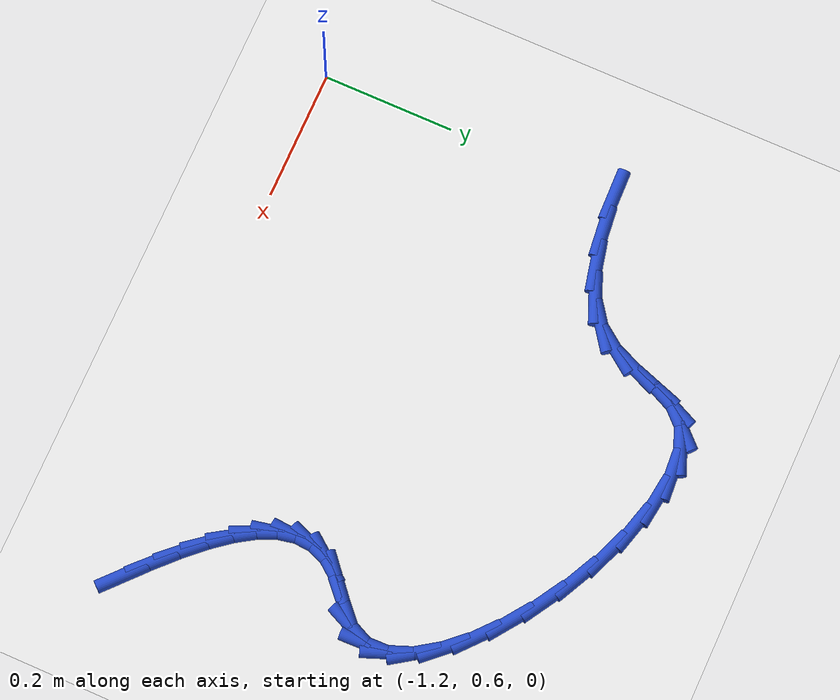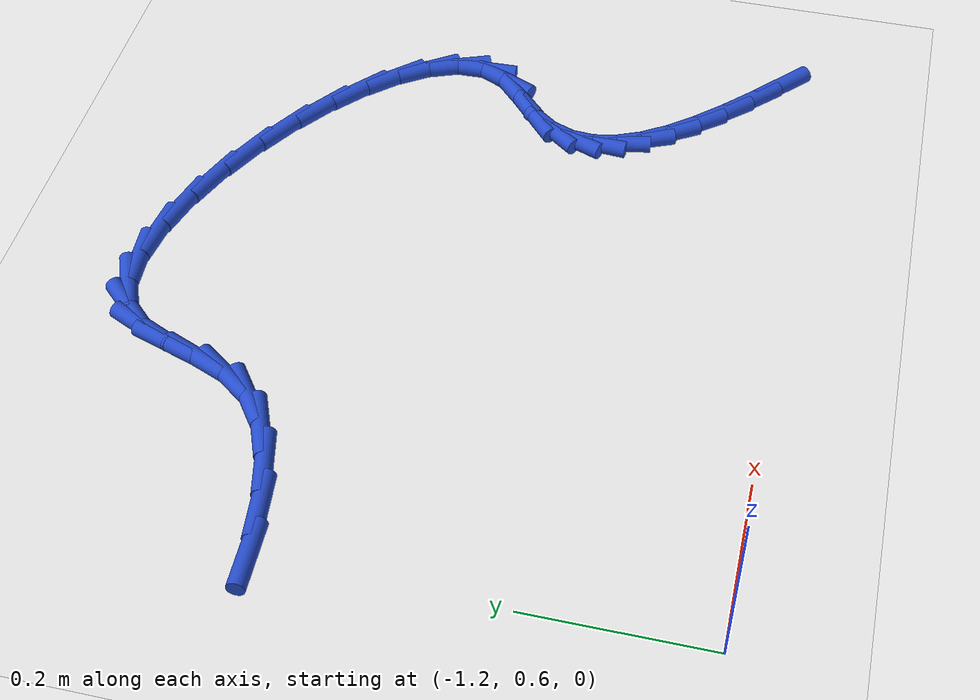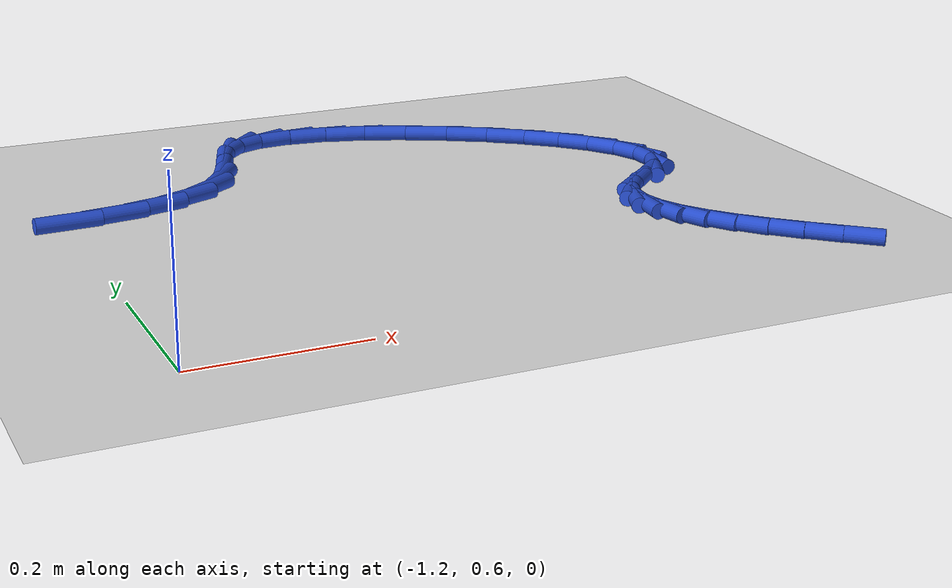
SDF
<sdf version="1.6">
 <world name="default">
  <model name="ground_plane">
   <static>1</static>
   <link name="link">
    <collision name="collision">
     <geometry><plane><normal>0 0 1</normal><size>100 100</size></plane></geometry>
     <surface><friction><ode><mu>100</mu><mu2>50</mu2></ode></friction></surface>
    </collision>
    <visual name="visual">
     <cast_shadows>0</cast_shadows>
     <geometry><plane><normal>0 0 1</normal><size>100 100</size></plane></geometry>
     <material>
      <script><uri>file://media/materials/scripts/gazebo.material</uri><name>Gazebo/WhiteGlow</name></script>
     </material>
    </visual>
   </link>
  </model>
  <model name="line">
   <link name="link_18">
    <pose>-0.3944733645295602 0.643469968081901 0.01 0 1.57 -0.7333899221836887</pose>
    <collision name="collision">
     <geometry><cylinder><radius>0.01</radius><length>0.08</length></cylinder></geometry>
    </collision>
    <visual name="visual">
     <material>
      <script><name>Gazebo/Blue</name><uri>file://media/materials/scripts/gazebo.material</uri></script>
     </material>
     <geometry><cylinder><radius>0.01</radius><length>0.08</length></cylinder></geometry>
    </visual>
   </link>
   <link name="link_19">
    <pose>-0.42904845508757306 0.6746235409936031 0.01 0 1.57 -0.7681784095103517</pose>
    <collision name="collision">
     <geometry><cylinder><radius>0.01</radius><length>0.08</length></cylinder></geometry>
    </collision>
    <visual name="visual">
     <material>
      <script><name>Gazebo/Blue</name><uri>file://media/materials/scripts/gazebo.material</uri></script>
     </material>
     <geometry><cylinder><radius>0.01</radius><length>0.08</length></cylinder></geometry>
    </visual>
   </link>
   <link name="link_20">
    <pose>-0.46063235762906846 0.7051380190012713 0.01 0 1.57 -0.8201573629295184</pose>
    <collision name="collision">
     <geometry><cylinder><radius>0.01</radius><length>0.08</length></cylinder></geometry>
    </collision>
    <visual name="visual">
     <material>
      <script><name>Gazebo/Blue</name><uri>file://media/materials/scripts/gazebo.material</uri></script>
     </material>
     <geometry><cylinder><radius>0.01</radius><length>0.08</length></cylinder></geometry>
    </visual>
   </link>
   <link name="link_21">
    <pose>-0.4884792883546626 0.7349913735768715 0.01 0 1.57 -0.8954700918053922</pose>
    <collision name="collision">
     <geometry><cylinder><radius>0.01</radius><length>0.08</length></cylinder></geometry>
    </collision>
    <visual name="visual">
     <material>
      <script><name>Gazebo/Blue</name><uri>file://media/materials/scripts/gazebo.material</uri></script>
     </material>
     <geometry><cylinder><radius>0.01</radius><length>0.08</length></cylinder></geometry>
    </visual>
   </link>
   <link name="link_22">
    <pose>-0.5118434634649714 0.7641615761923694 0.01 0 1.57 -1.0035289208157723</pose>
    <collision name="collision">
     <geometry><cylinder><radius>0.01</radius><length>0.08</length></cylinder></geometry>
    </collision>
    <visual name="visual">
     <material>
      <script><name>Gazebo/Blue</name><uri>file://media/materials/scripts/gazebo.material</uri></script>
     </material>
     <geometry><cylinder><radius>0.01</radius><length>0.08</length></cylinder></geometry>
    </visual>
   </link>
   <link name="link_23">
    <pose>-0.5299790991606106 0.7926265983197295 0.01 0 1.57 -1.1575988159489503</pose>
    <collision name="collision">
     <geometry><cylinder><radius>0.01</radius><length>0.08</length></cylinder></geometry>
    </collision>
    <visual name="visual">
     <material>
      <script><name>Gazebo/Blue</name><uri>file://media/materials/scripts/gazebo.material</uri></script>
     </material>
     <geometry><cylinder><radius>0.01</radius><length>0.08</length></cylinder></geometry>
    </visual>
   </link>
   <link name="link_24">
    <pose>-0.5421404116421964 0.8203644114309181 0.01 0 1.57 -1.371851790773864</pose>
    <collision name="collision">
     <geometry><cylinder><radius>0.01</radius><length>0.08</length></cylinder></geometry>
    </collision>
    <visual name="visual">
     <material>
      <script><name>Gazebo/Blue</name><uri>file://media/materials/scripts/gazebo.material</uri></script>
     </material>
     <geometry><cylinder><radius>0.01</radius><length>0.08</length></cylinder></geometry>
    </visual>
   </link>
   <link name="link_25">
    <pose>-0.5475816171103445 0.8473529869979004 0.01 0 1.57 1.4937222623565098</pose>
    <collision name="collision">
     <geometry><cylinder><radius>0.01</radius><length>0.08</length></cylinder></geometry>
    </collision>
    <visual name="visual">
     <material>
      <script><name>Gazebo/Blue</name><uri>file://media/materials/scripts/gazebo.material</uri></script>
     </material>
     <geometry><cylinder><radius>0.01</radius><length>0.08</length></cylinder></geometry>
    </visual>
   </link>
   <link name="link_26">
    <pose>-0.5455569317656712 0.8735702964926421 0.01 0 1.57 1.188028528805704</pose>
    <collision name="collision">
     <geometry><cylinder><radius>0.01</radius><length>0.08</length></cylinder></geometry>
    </collision>
    <visual name="visual">
     <material>
      <script><name>Gazebo/Blue</name><uri>file://media/materials/scripts/gazebo.material</uri></script>
     </material>
     <geometry><cylinder><radius>0.01</radius><length>0.08</length></cylinder></geometry>
    </visual>
   </link>
   <link name="link_27">
    <pose>-0.5353205718087921 0.8989943113871081 0.01 0 1.57 0.9083943182646078</pose>
    <collision name="collision">
     <geometry><cylinder><radius>0.01</radius><length>0.08</length></cylinder></geometry>
    </collision>
    <visual name="visual">
     <material>
      <script><name>Gazebo/Blue</name><uri>file://media/materials/scripts/gazebo.material</uri></script>
     </material>
     <geometry><cylinder><radius>0.01</radius><length>0.08</length></cylinder></geometry>
    </visual>
   </link>
   <link name="link_28">
    <pose>-0.5161267534403231 0.923603003153264 0.01 0 1.57 0.6995589979222087</pose>
    <collision name="collision">
     <geometry><cylinder><radius>0.01</radius><length>0.08</length></cylinder></geometry>
    </collision>
    <visual name="visual">
     <material>
      <script><name>Gazebo/Blue</name><uri>file://media/materials/scripts/gazebo.material</uri></script>
     </material>
     <geometry><cylinder><radius>0.01</radius><length>0.08</length></cylinder></geometry>
    </visual>
   </link>
   <link name="link_29">
    <pose>-0.4877557013883198 0.9474782304685976 0.01 0 1.57 0.7387398171998228</pose>
    <collision name="collision">
     <geometry><cylinder><radius>0.01</radius><length>0.08</length></cylinder></geometry>
    </collision>
    <visual name="visual">
     <material>
      <script><name>Gazebo/Blue</name><uri>file://media/materials/scripts/gazebo.material</uri></script>
     </material>
     <geometry><cylinder><radius>0.01</radius><length>0.08</length></cylinder></geometry>
    </visual>
   </link>
   <link name="link_30">
    <pose>-0.46007120582056277 0.972692752711297 0.01 0 1.57 1.136447964704241</pose>
    <collision name="collision">
     <geometry><cylinder><radius>0.01</radius><length>0.08</length></cylinder></geometry>
    </collision>
    <visual name="visual">
     <material>
      <script><name>Gazebo/Blue</name><uri>file://media/materials/scripts/gazebo.material</uri></script>
     </material>
     <geometry><cylinder><radius>0.01</radius><length>0.08</length></cylinder></geometry>
    </visual>
   </link>
   <link name="link_31">
    <pose>-0.4465619616064606 1.00181412196866 0.01 0 1.57 -1.542672664037682</pose>
    <collision name="collision">
     <geometry><cylinder><radius>0.01</radius><length>0.08</length></cylinder></geometry>
    </collision>
    <visual name="visual">
     <material>
      <script><name>Gazebo/Blue</name><uri>file://media/materials/scripts/gazebo.material</uri></script>
     </material>
     <geometry><cylinder><radius>0.01</radius><length>0.08</length></cylinder></geometry>
    </visual>
   </link>
   <link name="link_32">
    <pose>-0.44747431749824396 1.0342464316311515 0.01 0 1.57 -1.1989750651733546</pose>
    <collision name="collision">
     <geometry><cylinder><radius>0.01</radius><length>0.08</length></cylinder></geometry>
    </collision>
    <visual name="visual">
     <material>
      <script><name>Gazebo/Blue</name><uri>file://media/materials/scripts/gazebo.material</uri></script>
     </material>
     <geometry><cylinder><radius>0.01</radius><length>0.08</length></cylinder></geometry>
    </visual>
   </link>
   <link name="link_33">
    <pose>-0.4609887171425135 1.0689023023341906 0.01 0 1.57 -0.9744169431775022</pose>
    <collision name="collision">
     <geometry><cylinder><radius>0.01</radius><length>0.08</length></cylinder></geometry>
    </collision>
    <visual name="visual">
     <material>
      <script><name>Gazebo/Blue</name><uri>file://media/materials/scripts/gazebo.material</uri></script>
     </material>
     <geometry><cylinder><radius>0.01</radius><length>0.08</length></cylinder></geometry>
    </visual>
   </link>
   <link name="link_34">
    <pose>-0.4852856041858698 1.1046943547131964 0.01 0 1.57 -0.8227326376124307</pose>
    <collision name="collision">
     <geometry><cylinder><radius>0.01</radius><length>0.08</length></cylinder></geometry>
    </collision>
    <visual name="visual">
     <material>
      <script><name>Gazebo/Blue</name><uri>file://media/materials/scripts/gazebo.material</uri></script>
     </material>
     <geometry><cylinder><radius>0.01</radius><length>0.08</length></cylinder></geometry>
    </visual>
   </link>
   <link name="link_35">
    <pose>-0.5185454222749135 1.1405352094035883 0.01 0 1.57 -0.711060561665479</pose>
    <collision name="collision">
     <geometry><cylinder><radius>0.01</radius><length>0.08</length></cylinder></geometry>
    </collision>
    <visual name="visual">
     <material>
      <script><name>Gazebo/Blue</name><uri>file://media/materials/scripts/gazebo.material</uri></script>
     </material>
     <geometry><cylinder><radius>0.01</radius><length>0.08</length></cylinder></geometry>
    </visual>
   </link>
   <link name="link_36">
    <pose>-0.5589486150562449 1.1753374870407862 0.01 0 1.57 -0.6204546544382566</pose>
    <collision name="collision">
     <geometry><cylinder><radius>0.01</radius><length>0.08</length></cylinder></geometry>
    </collision>
    <visual name="visual">
     <material>
      <script><name>Gazebo/Blue</name><uri>file://media/materials/scripts/gazebo.material</uri></script>
     </material>
     <geometry><cylinder><radius>0.01</radius><length>0.08</length></cylinder></geometry>
    </visual>
   </link>
   <link name="link_37">
    <pose>-0.6046756261764653 1.2080138082602099 0.01 0 1.57 -0.5392869423029371</pose>
    <collision name="collision">
     <geometry><cylinder><radius>0.01</radius><length>0.08</length></cylinder></geometry>
    </collision>
    <visual name="visual">
     <material>
      <script><name>Gazebo/Blue</name><uri>file://media/materials/scripts/gazebo.material</uri></script>
     </material>
     <geometry><cylinder><radius>0.01</radius><length>0.08</length></cylinder></geometry>
    </visual>
   </link>
   <link name="link_38">
    <pose>-0.6539068992821746 1.2374767936972777 0.01 0 1.57 -0.45899043763180025</pose>
    <collision name="collision">
     <geometry><cylinder><radius>0.01</radius><length>0.08</length></cylinder></geometry>
    </collision>
    <visual name="visual">
     <material>
      <script><name>Gazebo/Blue</name><uri>file://media/materials/scripts/gazebo.material</uri></script>
     </material>
     <geometry><cylinder><radius>0.01</radius><length>0.08</length></cylinder></geometry>
    </visual>
   </link>
   <link name="link_39">
    <pose>-0.7048228780199733 1.2626390639874097 0.01 0 1.57 -0.371335257415872</pose>
    <collision name="collision">
     <geometry><cylinder><radius>0.01</radius><length>0.08</length></cylinder></geometry>
    </collision>
    <visual name="visual">
     <material>
      <script><name>Gazebo/Blue</name><uri>file://media/materials/scripts/gazebo.material</uri></script>
     </material>
     <geometry><cylinder><radius>0.01</radius><length>0.08</length></cylinder></geometry>
    </visual>
   </link>
   <link name="link_40">
    <pose>-0.7556040060364625 1.2824132397660248 0.01 0 1.57 -0.2659150556534276</pose>
    <collision name="collision">
     <geometry><cylinder><radius>0.01</radius><length>0.08</length></cylinder></geometry>
    </collision>
    <visual name="visual">
     <material>
      <script><name>Gazebo/Blue</name><uri>file://media/materials/scripts/gazebo.material</uri></script>
     </material>
     <geometry><cylinder><radius>0.01</radius><length>0.08</length></cylinder></geometry>
    </visual>
   </link>
   <link name="link_41">
    <pose>-0.8044307269782427 1.2957119416685434 0.01 0 1.57 -0.12663278322390786</pose>
    <collision name="collision">
     <geometry><cylinder><radius>0.01</radius><length>0.08</length></cylinder></geometry>
    </collision>
    <visual name="visual">
     <material>
      <script><name>Gazebo/Blue</name><uri>file://media/materials/scripts/gazebo.material</uri></script>
     </material>
     <geometry><cylinder><radius>0.01</radius><length>0.08</length></cylinder></geometry>
    </visual>
   </link>
   <link name="link_42">
    <pose>-0.849483484491914 1.3014477903303843 0.01 0 1.57 0.07372422909392097</pose>
    <collision name="collision">
     <geometry><cylinder><radius>0.01</radius><length>0.08</length></cylinder></geometry>
    </collision>
    <visual name="visual">
     <material>
      <script><name>Gazebo/Blue</name><uri>file://media/materials/scripts/gazebo.material</uri></script>
     </material>
     <geometry><cylinder><radius>0.01</radius><length>0.08</length></cylinder></geometry>
    </visual>
   </link>
   <link name="link_43">
    <pose>-0.8889427222240773 1.2985334063869667 0.01 0 1.57 0.37602022117149386</pose>
    <collision name="collision">
     <geometry><cylinder><radius>0.01</radius><length>0.08</length></cylinder></geometry>
    </collision>
    <visual name="visual">
     <material>
      <script><name>Gazebo/Blue</name><uri>file://media/materials/scripts/gazebo.material</uri></script>
     </material>
     <geometry><cylinder><radius>0.01</radius><length>0.08</length></cylinder></geometry>
    </visual>
   </link>
   <link name="link_44">
    <pose>-0.9209888838213334 1.2858814104737102 0.01 0 1.57 0.7957376962847799</pose>
    <collision name="collision">
     <geometry><cylinder><radius>0.01</radius><length>0.08</length></cylinder></geometry>
    </collision>
    <visual name="visual">
     <material>
      <script><name>Gazebo/Blue</name><uri>file://media/materials/scripts/gazebo.material</uri></script>
     </material>
     <geometry><cylinder><radius>0.01</radius><length>0.08</length></cylinder></geometry>
    </visual>
   </link>
   <link name="link_45">
    <pose>-0.9439050333758008 1.2624864081774427 0.01 0 1.57 1.1330621892091943</pose>
    <collision name="collision">
     <geometry><cylinder><radius>0.01</radius><length>0.08</length></cylinder></geometry>
    </collision>
    <visual name="visual">
     <material>
      <script><name>Gazebo/Blue</name><uri>file://media/materials/scripts/gazebo.material</uri></script>
     </material>
     <geometry><cylinder><radius>0.01</radius><length>0.08</length></cylinder></geometry>
    </visual>
   </link>
   <link name="link_46">
    <pose>-0.9591611039556247 1.2298890405930683 0.01 0 1.57 1.2402261195169373</pose>
    <collision name="collision">
     <geometry><cylinder><radius>0.01</radius><length>0.08</length></cylinder></geometry>
    </collision>
    <visual name="visual">
     <material>
      <script><name>Gazebo/Blue</name><uri>file://media/materials/scripts/gazebo.material</uri></script>
     </material>
     <geometry><cylinder><radius>0.01</radius><length>0.08</length></cylinder></geometry>
    </visual>
   </link>
   <link name="link_47">
    <pose>-0.9719545670697183 1.1926079329432684 0.01 0 1.57 1.171265808478501</pose>
    <collision name="collision">
     <geometry><cylinder><radius>0.01</radius><length>0.08</length></cylinder></geometry>
    </collision>
    <visual name="visual">
     <material>
      <script><name>Gazebo/Blue</name><uri>file://media/materials/scripts/gazebo.material</uri></script>
     </material>
     <geometry><cylinder><radius>0.01</radius><length>0.08</length></cylinder></geometry>
    </visual>
   </link>
   <link name="link_48">
    <pose>-0.9876944816956905 1.1553307507258093 0.01 0 1.57 0.9349053990979008</pose>
    <collision name="collision">
     <geometry><cylinder><radius>0.01</radius><length>0.08</length></cylinder></geometry>
    </collision>
    <visual name="visual">
     <material>
      <script><name>Gazebo/Blue</name><uri>file://media/materials/scripts/gazebo.material</uri></script>
     </material>
     <geometry><cylinder><radius>0.01</radius><length>0.08</length></cylinder></geometry>
    </visual>
   </link>
   <link name="link_49">
    <pose>-1.0117629140037727 1.1227254900117059 0.01 0 1.57 0.6185591939464439</pose>
    <collision name="collision">
     <geometry><cylinder><radius>0.01</radius><length>0.08</length></cylinder></geometry>
    </collision>
    <visual name="visual">
     <material>
      <script><name>Gazebo/Blue</name><uri>file://media/materials/scripts/gazebo.material</uri></script>
     </material>
     <geometry><cylinder><radius>0.01</radius><length>0.08</length></cylinder></geometry>
    </visual>
   </link>
   <link name="link_50">
    <pose>-1.04702646401402 1.0976271483071323 0.01 0 1.57 0.3831009308370855</pose>
    <collision name="collision">
     <geometry><cylinder><radius>0.01</radius><length>0.08</length></cylinder></geometry>
    </collision>
    <visual name="visual">
     <material>
      <script><name>Gazebo/Blue</name><uri>file://media/materials/scripts/gazebo.material</uri></script>
     </material>
     <geometry><cylinder><radius>0.01</radius><length>0.08</length></cylinder></geometry>
    </visual>
   </link>
   <link name="link_51">
    <pose>-1.0918255580740293 1.0795725392626503 0.01 0 1.57 0.22265292155680552</pose>
    <collision name="collision">
     <geometry><cylinder><radius>0.01</radius><length>0.08</length></cylinder></geometry>
    </collision>
    <visual name="visual">
     <material>
      <script><name>Gazebo/Blue</name><uri>file://media/materials/scripts/gazebo.material</uri></script>
     </material>
     <geometry><cylinder><radius>0.01</radius><length>0.08</length></cylinder></geometry>
    </visual>
   </link>
   <link name="link_52">
    <pose>-1.1440274534296377 1.0677536822709524 0.01 0 1.57 0.11074853608529343</pose>
    <collision name="collision">
     <geometry><cylinder><radius>0.01</radius><length>0.08</length></cylinder></geometry>
    </collision>
    <visual name="visual">
     <material>
      <script><name>Gazebo/Blue</name><uri>file://media/materials/scripts/gazebo.material</uri></script>
     </material>
     <geometry><cylinder><radius>0.01</radius><length>0.08</length></cylinder></geometry>
    </visual>
   </link>
   <link name="link_53">
    <pose>-1.201499407326686 1.0613625967247309 0.01 0 1.57 0.029216499290346757</pose>
    <collision name="collision">
     <geometry><cylinder><radius>0.01</radius><length>0.08</length></cylinder></geometry>
    </collision>
    <visual name="visual">
     <material>
      <script><name>Gazebo/Blue</name><uri>file://media/materials/scripts/gazebo.material</uri></script>
     </material>
     <geometry><cylinder><radius>0.01</radius><length>0.08</length></cylinder></geometry>
    </visual>
   </link>
  </model>
 </world>
</sdf>
